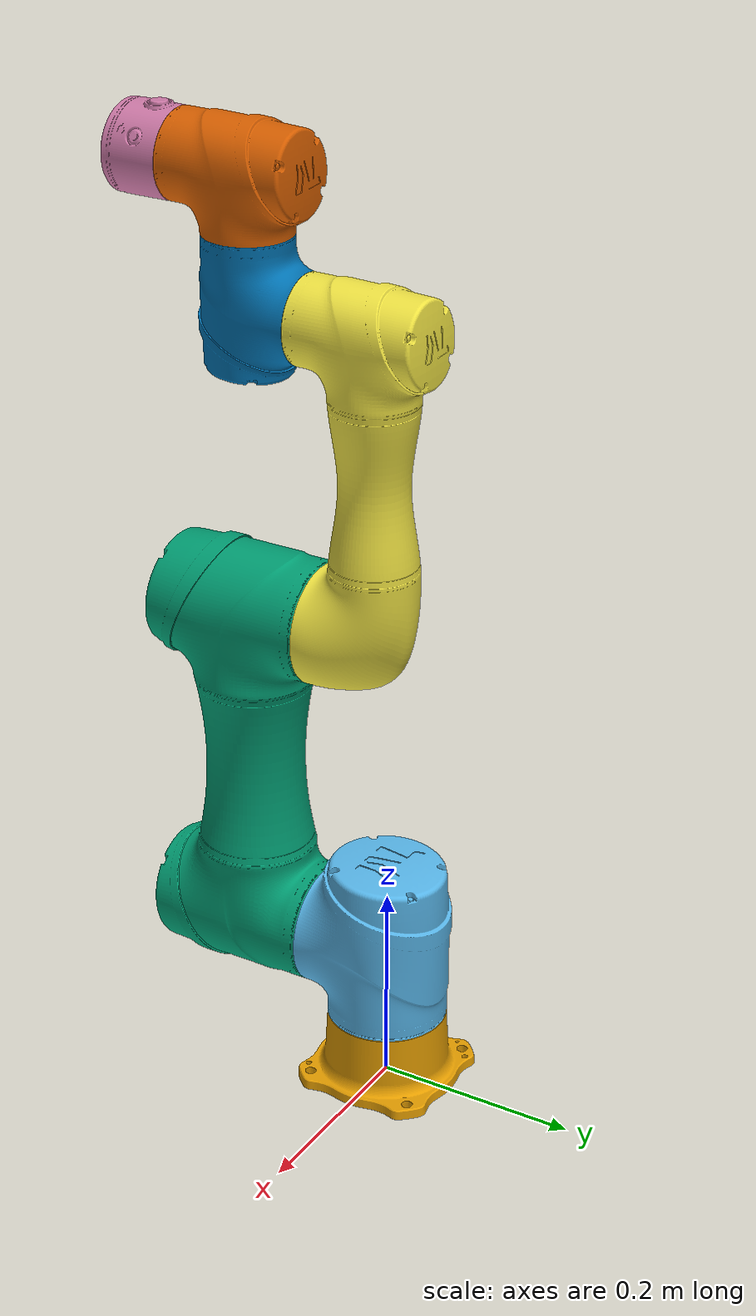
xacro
<?xml version="1.0"?>
<robot xmlns:xacro="http://www.ros.org/wiki/xacro" name="tm7sx">

  <xacro:arg name="ns" default="" />
  <xacro:arg name="prefix" default="" />
  <xacro:arg name="color" default="none" />
  <xacro:arg name="trans_hw_iface" default="hardware_interface/PositionJointInterface" />

  <xacro:include filename="$(find tm_description)/xacro/macro.gazebo.xacro" />
  <xacro:include filename="$(find tm_description)/xacro/macro.transmission.xacro" />
  <xacro:include filename="$(find tm_description)/xacro/macro.materials.xacro" />

  <!-- tm7sx -->
  <!-- If the user want to use newly generated named robot description file as user_defined.urdf.xacro, -->
  <!-- you must modify 'macro.tm7sx-nominal.urdf.xacro' to 'user_defined.urdf.xacro'  -->
  <xacro:include filename="$(find tm_description)/xacro/macro.tm7sx-nominal.urdf.xacro" />

  <xacro:tmr_gazebo ns="$(arg ns)" prefix="$(arg prefix)" />
  <xacro:tmr_transmission prefix="$(arg prefix)" hw_iface="$(arg trans_hw_iface)" />
  <xacro:tmr_materials/>

  <!-- Arm -->
  <xacro:property name="color" value="$(arg color)"/>
  <xacro:if value="${color == 'none'}">
    <xacro:tm7sx ns="$(arg ns)" prefix="$(arg prefix)" />
  </xacro:if>

  <!-- Arm.color.stl -->
  <xacro:unless value="${color == 'none'}">
    <xacro:tm7sx ns="$(arg ns)" prefix="$(arg prefix)" color="${color}" format="obj" />
  </xacro:unless>

</robot>

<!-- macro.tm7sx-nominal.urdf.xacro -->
<robot xmlns:xacro="http://www.ros.org/wiki/xacro">

  <xacro:include filename="$(find tm_description)/xacro/macro.inertial.xacro" />

  <xacro:macro name="tm7sx" params="ns prefix color:=none format:=obj
    joint_1_lower_limit:=${radians(-360)}    joint_1_upper_limit:=${radians(360)}
    joint_2_lower_limit:=${radians(-360)}    joint_2_upper_limit:=${radians(360)}
    joint_3_lower_limit:=${radians(-152)}    joint_3_upper_limit:=${radians(152)}
    joint_4_lower_limit:=${radians(-360)}    joint_4_upper_limit:=${radians(360)}
    joint_5_lower_limit:=${radians(-360)}    joint_5_upper_limit:=${radians(360)}
    joint_6_lower_limit:=${radians(-360)}    joint_6_upper_limit:=${radians(360)}
    joint_1_velocity_limit:=${radians(210)}
    joint_2_velocity_limit:=${radians(210)}
    joint_3_velocity_limit:=${radians(210)}
    joint_4_velocity_limit:=${radians(225)}
    joint_5_velocity_limit:=${radians(225)}
    joint_6_velocity_limit:=${radians(450)}
    joint_1_effort_limit:=${170}
    joint_2_effort_limit:=${170}
    joint_3_effort_limit:=${170}
    joint_4_effort_limit:=${45}
    joint_5_effort_limit:=${45}
    joint_6_effort_limit:=${45}
    safety_limits:=false safety_pos_margin:=0.15
    safety_k_position:=20">

   <xacro:property name="damping_factor" value="0.000"/>
   <xacro:property name="d1" value="${damping_factor*0.1}"/>
   <xacro:property name="d2" value="${damping_factor*0.1}"/>
   <xacro:property name="d3" value="${damping_factor*0.1}"/>
   <xacro:property name="d4" value="${damping_factor*0.1}"/>
   <xacro:property name="d5" value="${damping_factor*0.1}"/>
   <xacro:property name="d6" value="${damping_factor*0.1}"/>

   <xacro:property name="friction_factor" value="0.000"/>
   <xacro:property name="f1" value="${friction_factor*0.1}"/>
   <xacro:property name="f2" value="${friction_factor*0.1}"/>
   <xacro:property name="f3" value="${friction_factor*0.1}"/>
   <xacro:property name="f4" value="${friction_factor*0.1}"/>
   <xacro:property name="f5" value="${friction_factor*0.1}"/>
   <xacro:property name="f6" value="${friction_factor*0.1}"/>

    <!-- Inertia parameters -->
    <xacro:property name="mass_0" value="1.0" />
    <xacro:property name="mass_1" value="4.320" />
    <xacro:property name="mass_2" value="9.456" />
    <xacro:property name="mass_3" value="2.618" />
    <xacro:property name="mass_4" value="1.770" />
    <xacro:property name="mass_5" value="1.770" />
    <xacro:property name="mass_6" value="0.340" />

    <xacro:property name="unit_factor" value="0.000001"/>
    <xacro:property name="ixx_1" value="${8439.2993*unit_factor}" />
    <xacro:property name="ixx_2" value="${28756.423*unit_factor}" />
    <xacro:property name="ixx_3" value="${4027.8840*unit_factor}" />
    <xacro:property name="ixx_4" value="${2046.0318*unit_factor}" />
    <xacro:property name="ixx_5" value="${2046.0318*unit_factor}" />
    <xacro:property name="ixx_6" value="${250.85804*unit_factor}" />

    <xacro:property name="iyy_1" value="${13793.964*unit_factor}" />
    <xacro:property name="iyy_2" value="${240700.11*unit_factor}" />
    <xacro:property name="iyy_3" value="${35507.262*unit_factor}" />
    <xacro:property name="iyy_4" value="${3171.8293*unit_factor}" />
    <xacro:property name="iyy_5" value="${3171.8293*unit_factor}" />
    <xacro:property name="iyy_6" value="${252.81701*unit_factor}" />

    <xacro:property name="izz_1" value="${14241.226*unit_factor}" />
    <xacro:property name="izz_2" value="${252296.10*unit_factor}" />
    <xacro:property name="izz_3" value="${36908.834*unit_factor}" />
    <xacro:property name="izz_4" value="${3478.9518*unit_factor}" />
    <xacro:property name="izz_5" value="${3478.9518*unit_factor}" />
    <xacro:property name="izz_6" value="${312.21304*unit_factor}" />

<!--LinkDescription-->
  <link name="${prefix}link_0">
    <visual>
      <geometry>
        <mesh filename="package://tm_description/meshes/tm7s/visual/tm7s-base.${format}" />
      </geometry>
      <material name="${color}" />
    </visual>
    <collision>
      <geometry>
        <mesh filename="package://tm_description/meshes/tm7s/collision/tm7s-base_c.stl" />
      </geometry>
    </collision>
<!--inertial-->
    <xacro:cylinder_inertial_z radius="0.06" length="0.05" mass="${mass_0}">
      <origin rpy="0.000000 0.000000 0.000000" xyz="0.000000 0.000000 0.000000" />
    </xacro:cylinder_inertial_z>
  </link>
  <joint name="${prefix}joint_1" type="revolute">
    <parent link="${prefix}link_0" />
    <child link="${prefix}link_1" />
    <origin rpy="0.000000 -0.000000 0.000000" xyz="0.000000 0.000000 0.148400" />
    <axis xyz="0 0 1" />
<!--limit-->
    <limit lower="${joint_1_lower_limit}" upper="${joint_1_upper_limit}" velocity="${joint_1_velocity_limit}" effort="${joint_1_effort_limit}" />
    <xacro:if value="${safety_limits}">
      <safety_controller soft_lower_limit="${joint_1_lower_limit + safety_pos_margin}" soft_upper_limit="${joint_1_upper_limit - safety_pos_margin}" k_position="${safety_k_position}" k_velocity="0.0" />
    </xacro:if>
    <dynamics damping="${d1}" friction="${f1}" />
  </joint>
  <link name="${prefix}link_1">
    <visual>
      <geometry>
        <mesh filename="package://tm_description/meshes/tm7s/visual/tm7s-j1.${format}" />
      </geometry>
      <material name="${color}" />
    </visual>
    <collision>
      <geometry>
        <mesh filename="package://tm_description/meshes/tm7s/collision/tm7s-j1_c.stl" />
      </geometry>
    </collision>
    <inertial>
      <origin rpy="0.000000 0.000000 0.000000" xyz="0.000000 0.000000 0.000000" />
      <mass value="${mass_1}" />
      <inertia ixx="${ixx_1}" ixy="0.000000" ixz="0.000000" iyy="${iyy_1}" iyz="0.000000" izz="${izz_1}" />
    </inertial>
  </link>
  <joint name="${prefix}joint_2" type="revolute">
    <parent link="${prefix}link_1" />
    <child link="${prefix}link_2" />
    <origin rpy="-1.570796 -1.570796 0.000000" xyz="0.000000 0.000000 0.000000" />
    <axis xyz="0 0 1" />
<!--limit-->
    <limit lower="${joint_2_lower_limit}" upper="${joint_2_upper_limit}" velocity="${joint_2_velocity_limit}" effort="${joint_2_effort_limit}" />
    <xacro:if value="${safety_limits}">
      <safety_controller soft_lower_limit="${joint_2_lower_limit + safety_pos_margin}" soft_upper_limit="${joint_2_upper_limit - safety_pos_margin}" k_position="${safety_k_position}" k_velocity="0.0" />
    </xacro:if>
    <dynamics damping="${d2}" friction="${f2}" />
  </joint>
  <link name="${prefix}link_2">
    <visual>
      <geometry>
        <mesh filename="package://tm_description/meshes/tm7s/visual/tm7s-a1.${format}" />
      </geometry>
      <material name="${color}" />
    </visual>
    <collision>
      <geometry>
        <mesh filename="package://tm_description/meshes/tm7s/collision/tm7s-a1_c.stl" />
      </geometry>
    </collision>
    <inertial>
      <origin rpy="0.000000 0.000000 0.000000" xyz="0.000000 0.000000 0.000000" />
      <mass value="${mass_2}" />
      <inertia ixx="${ixx_2}" ixy="0.000000" ixz="0.000000" iyy="${iyy_2}" iyz="0.000000" izz="${izz_2}" />
    </inertial>
  </link>
  <joint name="${prefix}joint_3" type="revolute">
    <parent link="${prefix}link_2" />
    <child link="${prefix}link_3" />
    <origin rpy="0.000000 -0.000000 0.000000" xyz="0.329000 0.000000 0.000000" />
    <axis xyz="0 0 1" />
<!--limit-->
    <limit lower="${joint_3_lower_limit}" upper="${joint_3_upper_limit}" velocity="${joint_3_velocity_limit}" effort="${joint_3_effort_limit}" />
    <xacro:if value="${safety_limits}">
      <safety_controller soft_lower_limit="${joint_3_lower_limit + safety_pos_margin}" soft_upper_limit="${joint_3_upper_limit - safety_pos_margin}" k_position="${safety_k_position}" k_velocity="0.0" />
    </xacro:if>
    <dynamics damping="${d3}" friction="${f3}" />
  </joint>
  <link name="${prefix}link_3">
    <visual>
      <geometry>
        <mesh filename="package://tm_description/meshes/tm7s/visual/tm7s-a2.${format}" />
      </geometry>
      <material name="${color}" />
    </visual>
    <collision>
      <geometry>
        <mesh filename="package://tm_description/meshes/tm7s/collision/tm7s-a2_c.stl" />
      </geometry>
    </collision>
    <inertial>
      <origin rpy="0.000000 0.000000 0.000000" xyz="0.000000 0.000000 0.000000" />
      <mass value="${mass_3}" />
      <inertia ixx="${ixx_3}" ixy="0.000000" ixz="0.000000" iyy="${iyy_3}" iyz="0.000000" izz="${izz_3}" />
    </inertial>
  </link>
  <joint name="${prefix}joint_4" type="revolute">
    <parent link="${prefix}link_3" />
    <child link="${prefix}link_4" />
    <origin rpy="0.000000 -0.000000 1.570796" xyz="0.298000 0.000000 -0.147800" />
    <axis xyz="0 0 1" />
<!--limit-->
    <limit lower="${joint_4_lower_limit}" upper="${joint_4_upper_limit}" velocity="${joint_4_velocity_limit}" effort="${joint_4_effort_limit}" />
    <xacro:if value="${safety_limits}">
      <safety_controller soft_lower_limit="${joint_4_lower_limit + safety_pos_margin}" soft_upper_limit="${joint_4_upper_limit - safety_pos_margin}" k_position="${safety_k_position}" k_velocity="0.0" />
    </xacro:if>
    <dynamics damping="${d4}" friction="${f4}" />
  </joint>
  <link name="${prefix}link_4">
    <visual>
      <geometry>
        <mesh filename="package://tm_description/meshes/tm7s/visual/tm7s-j5.${format}" />
      </geometry>
      <material name="${color}" />
    </visual>
    <collision>
      <geometry>
        <mesh filename="package://tm_description/meshes/tm7s/collision/tm7s-j5_c.stl" />
      </geometry>
    </collision>
    <inertial>
      <origin rpy="0.000000 0.000000 0.000000" xyz="0.000000 0.000000 0.000000" />
      <mass value="${mass_4}" />
      <inertia ixx="${ixx_4}" ixy="0.000000" ixz="0.000000" iyy="${iyy_4}" iyz="0.000000" izz="${izz_4}" />
    </inertial>
  </link>
  <joint name="${prefix}joint_5" type="revolute">
    <parent link="${prefix}link_4" />
    <child link="${prefix}link_5" />
    <origin rpy="1.570796 -0.000000 0.000000" xyz="0.000000 -0.131500 0.000000" />
    <axis xyz="0 0 1" />
<!--limit-->
    <limit lower="${joint_5_lower_limit}" upper="${joint_5_upper_limit}" velocity="${joint_5_velocity_limit}" effort="${joint_5_effort_limit}" />
    <xacro:if value="${safety_limits}">
      <safety_controller soft_lower_limit="${joint_5_lower_limit + safety_pos_margin}" soft_upper_limit="${joint_5_upper_limit - safety_pos_margin}" k_position="${safety_k_position}" k_velocity="0.0" />
    </xacro:if>
    <dynamics damping="${d5}" friction="${f5}" />
  </joint>
  <link name="${prefix}link_5">
    <visual>
      <geometry>
        <mesh filename="package://tm_description/meshes/tm7s/visual/tm7s-j6.${format}" />
      </geometry>
      <material name="${color}" />
    </visual>
    <collision>
      <geometry>
        <mesh filename="package://tm_description/meshes/tm7s/collision/tm7s-j6_c.stl" />
      </geometry>
    </collision>
    <inertial>
      <origin rpy="0.000000 0.000000 0.000000" xyz="0.000000 0.000000 0.000000" />
      <mass value="${mass_5}" />
      <inertia ixx="${ixx_5}" ixy="0.000000" ixz="0.000000" iyy="${iyy_5}" iyz="0.000000" izz="${izz_5}" />
    </inertial>
  </link>
  <joint name="${prefix}joint_6" type="revolute">
    <parent link="${prefix}link_5" />
    <child link="${prefix}link_6" />
    <origin rpy="1.570796 -0.000000 0.000000" xyz="0.000000 -0.134950 0.000000" />
    <axis xyz="0 0 1" />
<!--limit-->
    <limit lower="${joint_6_lower_limit}" upper="${joint_6_upper_limit}" velocity="${joint_6_velocity_limit}" effort="${joint_6_effort_limit}" />
    <xacro:if value="${safety_limits}">
      <safety_controller soft_lower_limit="${joint_6_lower_limit + safety_pos_margin}" soft_upper_limit="${joint_6_upper_limit - safety_pos_margin}" k_position="${safety_k_position}" k_velocity="0.0" />
    </xacro:if>
    <dynamics damping="${d6}" friction="${f6}" />
  </joint>
  <link name="${prefix}link_6">
    <visual>
      <geometry>
        <mesh filename="package://tm_description/meshes/tm5s/visual/tm5s-iox.${format}" />
      </geometry>
      <material name="${color}" />
    </visual>
    <collision>
      <geometry>
        <mesh filename="package://tm_description/meshes/tm5s/collision/tm5s-iox_c.stl" />
      </geometry>
    </collision>
    <inertial>
      <origin rpy="0.000000 0.000000 0.000000" xyz="0.000000 0.000000 0.000000" />
      <mass value="${mass_6}" />
      <inertia ixx="${ixx_6}" ixy="0.000000" ixz="0.000000" iyy="${iyy_6}" iyz="0.000000" izz="${izz_6}" />
    </inertial>
  </link>
  <link name="${prefix}base" />
  <joint name="${prefix}base_fixed_joint" type="fixed">
    <parent link="${prefix}base" />
    <child link="${prefix}link_0" />
    <origin rpy="0.000000 0.000000 0.000000" xyz="0.000000 0.000000 0.000000" />
  </joint>
  <link name="${prefix}flange" />
  <joint name="${prefix}flange_fixed_joint" type="fixed">
    <parent link="${prefix}link_6" />
    <child link="${prefix}flange" />
    <origin rpy="0.000000 0.000000 0.000000" xyz="0.000000 0.000000 0.000000" />
  </joint>
<!--LinkDescription-->

  </xacro:macro>

</robot>
